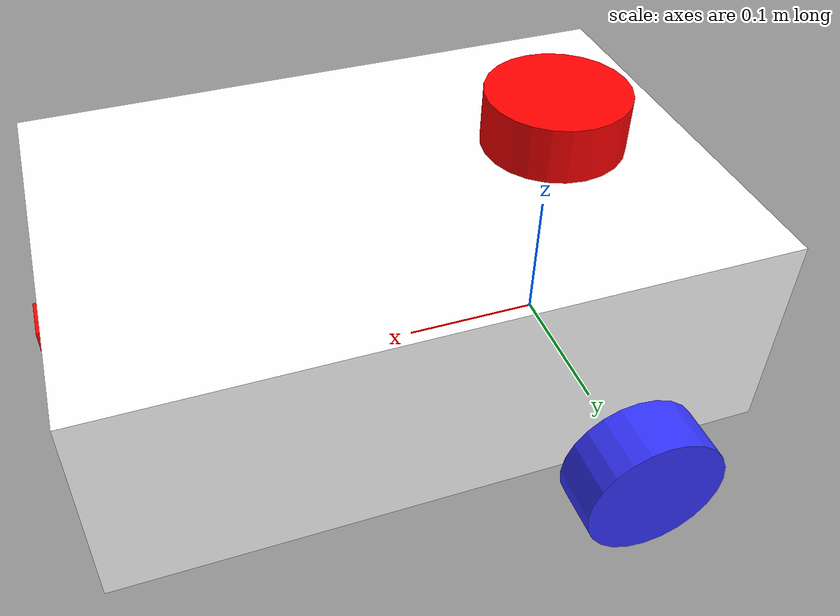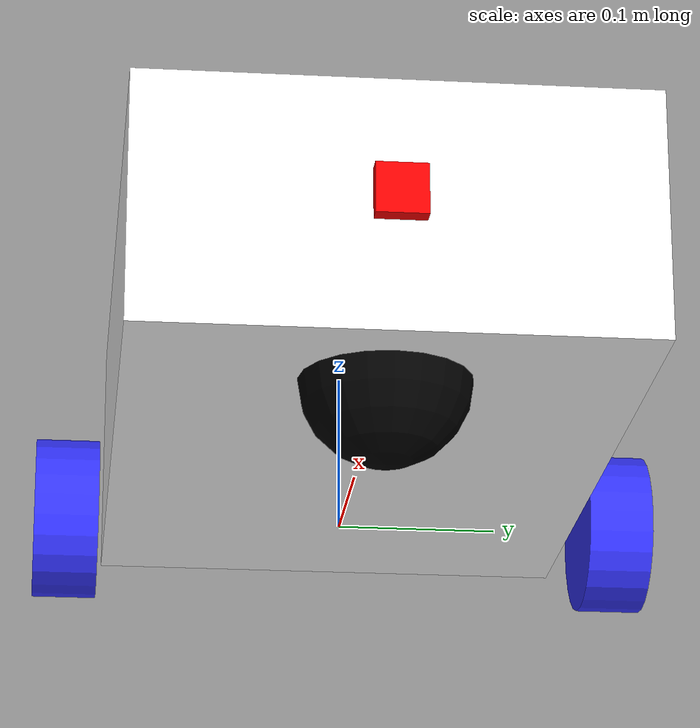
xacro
<?xml version="1.0"?>
<robot xmlns:xacro="http://www.ros.org/wiki/xacro"  name="robot">

    <xacro:arg name="use_ros2_control" default="true"/>

    <xacro:include filename="robot_core.xacro"/>
    <xacro:if value="$(arg use_ros2_control)">
        <xacro:include filename="ros2_control.xacro"/>
    </xacro:if>
    <xacro:unless value="$(arg use_ros2_control)">
        <xacro:include filename="gazebo_control.xacro"/>
    </xacro:unless>
    <xacro:include filename="lidar.xacro"/>
    <xacro:include filename="camera.xacro"/>
    <xacro:include filename="depth_camera.xacro"/>

</robot>

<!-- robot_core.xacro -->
<robot xmlns:xacro="http://www.ros.org/wiki/xacro">

    <xacro:include filename="inertial_macros.xacro"/>

    <xacro:property name="chassis_length" value="0.45"/>
    <xacro:property name="chassis_width" value="0.3"/>
    <xacro:property name="chassis_height" value="0.15"/>
    <xacro:property name="chassis_mass" value="0.7"/>
    <xacro:property name="wheel_radius" value="0.05"/>
    <xacro:property name="wheel_thickness" value="0.04"/>
    <xacro:property name="wheel_mass" value="0.01"/>
    <xacro:property name="wheel_offset_x" value="0.1"/>
    <xacro:property name="wheel_offset_y" value="0.175"/>
    <xacro:property name="wheel_offset_z" value="0"/>
    <xacro:property name="caster_wheel_radius" value="0.05"/>
    <xacro:property name="caster_wheel_mass" value="0.25"/>
    <xacro:property name="caster_wheel_offset_x" value="0.37"/>
    <xacro:property name="caster_wheel_offset_z" value="${wheel_offset_z - wheel_radius + caster_wheel_radius}"/>

    <material name="white">
        <color rgba="1 1 1 1"/>
    </material>

    <material name="orange">
        <color rgba="1 0.3 0.1 1"/>
    </material>

    <material name="blue">
        <color rgba="0.2 0.2 1 1"/>
    </material>

    <material name="black">
        <color rgba="0 0 0 1"/>
    </material>

    <material name="red">
        <color rgba="1 0 0 1"/>
    </material>

    <!-- BASE LINK -->

    <link name="base_link">

    </link>

    <!-- BASE_FOOTPRINT LINK -->

    <joint name="base_footprint_joint" type="fixed">
        <parent link="base_link"/>
        <child link="base_footprint"/>
        <origin xyz="0 0 0" rpy="0 0 0"/>
    </joint>

    <link name="base_footprint">
    </link>

    <!-- CHASSIS LINK -->

    <joint name="chassis_joint" type="fixed">
        <parent link="base_link"/>
        <child link="chassis"/>
        <origin xyz="${-wheel_offset_x} 0 0"/>
    </joint>

    <link name="chassis">
        <visual>
            <origin xyz="${chassis_length/2} 0 ${chassis_height/2}"/>
            <geometry>
                <box size="${chassis_length} ${chassis_width} ${chassis_height}"/>
            </geometry>
            <material name="white"/>
        </visual>
        <collision>
            <origin xyz="${chassis_length/2} 0 ${chassis_height/2}"/>
            <geometry>
                <box size="${chassis_length} ${chassis_width} ${chassis_height}"/>
            </geometry>
        </collision>
        <xacro:inertial_box mass="${chassis_mass}" x="${chassis_length}" y="${chassis_width}" z="${chassis_height}">
            <origin xyz="${chassis_length/2} 0 ${chassis_height/2}" rpy="0 0 0"/>
        </xacro:inertial_box>
    </link>

    <gazebo reference="chassis">
        <material>Gazebo/White</material>
    </gazebo>

    <!-- LEFT WHEEL LINK -->

    <joint name="left_wheel_joint" type = "continuous">
        <parent link="base_link"/>
        <child link="left_wheel"/>
        <origin xyz="0 ${wheel_offset_y} 0" rpy="-${pi/2} 0 0"/>
        <axis xyz="0 0 1"/>
    </joint>

    <link name="left_wheel">
        <visual>
            <geometry>
                <cylinder radius="${wheel_radius}" length="${wheel_thickness}"/>
            </geometry>
            <material name="blue"/>
        </visual>
        <collision>
            <geometry>
                <sphere radius="${wheel_radius}"/>
            </geometry>
        </collision>
        <xacro:inertial_cylinder mass="${wheel_mass}" length="${wheel_thickness}" radius="${wheel_radius}">
            <origin xyz="0 0 0" rpy="0 0 0"/>
        </xacro:inertial_cylinder>
    </link>

    <gazebo reference="left_wheel">
        <material>Gazebo/Blue</material>
    </gazebo>

    <!-- RIGHT WHEEL LINK -->

    <joint name="right_wheel_joint" type = "continuous">
        <parent link="base_link"/>
        <child link="right_wheel"/>
        <origin xyz="0 ${-wheel_offset_y} 0" rpy="${pi/2} 0 0"/>
        <axis xyz="0 0 -1"/>
    </joint>

    <link name="right_wheel">
        <visual>
            <geometry>
                <cylinder radius="${wheel_radius}" length="${wheel_thickness}"/>
            </geometry>
            <material name="blue"/>
        </visual>
        <collision>
            <geometry>
                <sphere radius="${wheel_radius}"/>
            </geometry>
        </collision>
        <xacro:inertial_cylinder mass="${wheel_mass}" length="${wheel_thickness}" radius="${wheel_radius}">
            <origin xyz="0 0 0" rpy="0 0 0"/>
        </xacro:inertial_cylinder>
    </link>

    <gazebo reference="right_wheel">
        <material>Gazebo/Blue</material>
    </gazebo>

    <!-- CASTER WHEEL LINK -->

    <joint name="caster_wheel_joint" type="fixed">
        <parent link="chassis"/>
        <child link="caster_wheel"/>
        <origin xyz="${caster_wheel_offset_x} 0 ${caster_wheel_offset_z}"/>
    </joint>

    <link name="caster_wheel">
        <visual>
            <geometry>
                <sphere radius="${caster_wheel_radius}"/>
            </geometry>
            <material name="black"/>
        </visual>
        <collision>
            <geometry>
                <sphere radius="${caster_wheel_radius}"/>
            </geometry>
        </collision>
        <xacro:inertial_sphere mass="${caster_wheel_mass}" radius="${caster_wheel_radius}">
            <origin xyz="0 0 0" rpy="0 0 0"/>
        </xacro:inertial_sphere>
    </link>

    <gazebo reference="caster_wheel">
        <material>Gazebo/Black</material>
        <mu1 value="0.001"/>
        <mu2 value="0.001"/>
    </gazebo>
</robot>

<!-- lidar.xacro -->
<robot xmlns:xacro="http://www.ros.org/wiki/xacro">

    <joint name="laser_joint" type="fixed">
        <parent link="chassis"/>
        <child link="laser_frame"/>
        <origin xyz="0.1 0 0.175" rpy="0 0 0"/>
    </joint>

    <link name="laser_frame">
        <visual>
            <geometry>
                <cylinder radius="0.05" length="0.04"/>
            </geometry>
            <material name="red"/>
        </visual>
        <collision>
            <geometry>
                <cylinder radius="0.05" length="0.04"/>
            </geometry>
        </collision>
        <xacro:inertial_cylinder mass="0.1" length="0.04" radius="0.05">
            <origin xyz="0 0 0" rpy="0 0 0"/>
        </xacro:inertial_cylinder>
    </link>

    <gazebo reference="laser_frame">
        <sensor name="laser" type="ray">
            <pose>0 0 0 0 0 0</pose>
            <visualize>false</visualize>
            <update_rate>10</update_rate>
            <ray>
                <scan>
                    <horizontal>
                        <samples>360</samples>
                        <min_angle>-3.14</min_angle>
                        <max_angle>3.14</max_angle>
                    </horizontal>
                </scan>
                <range>
                    <min>0.3</min>
                    <max>12</max>
                    <resolution>0.01</resolution>
                </range>
                <noise>
                   <type>gaussian</type>
                   <mean>0.0</mean>
                   <stddev>0.01</stddev>
                </noise>
            </ray>
            <plugin name="laser_controller" filename="libgz_ros_laser.so">
                <ros>
                    <argument>~/out:=scan</argument>
                </ros>
                <output_type>sensor_msgs/LaserScan</output_type>
                <topic>scan</topic>
                <frame_id>laser_frame</frame_id>
                <message_type>sensor_msgs/msg/LaserScan</message_type>
            </plugin>
        </sensor>
        <material>Gazebo/Red</material>
    </gazebo>

</robot>

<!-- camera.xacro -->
<robot xmlns:xacro="http://www.ros.org/wiki/xacro">

    <joint name="camera_joint" type="fixed">
        <parent link="chassis"/>
        <child link="camera_link"/>
        <origin xyz="0.455 0 0.08" rpy="0 0 0"/>
    </joint>

    <link name="camera_link">
        <visual>
            <geometry>
                <box size="0.01 0.03 0.03"/>
            </geometry>
            <material name="red"/>
        </visual>
    </link>

    <joint name="camera_optical_joint" type="fixed">
        <parent link="camera_link"/>
        <child link="camera_link_optical"/>
        <origin xyz="0 0 0" rpy="${-pi/2} 0 ${-pi/2}"/>
    </joint>

    <link name="camera_link_optical"></link>

    <gazebo reference="camera_link">
        <sensor name="camera" type="camera">
            <pose>0 0 0 0 0 0</pose>
            <visualize>true</visualize>
            <update_rate>10</update_rate>
            <camera>
                <horizontal_fov>1.089</horizontal_fov>
                <image>
                    <format>RGB8</format>
                    <width>640</width>
                    <height>480</height>
                </image>
                <clip>
                    <near>0.05</near>
                    <far>8.0</far>
                </clip>
            </camera>
            <plugin name="camera_controller" filename="libgz_ros_camera.so">
                #<frame_name>camera_link_optical</frame_name>
                <camera_name>camera</camera_name>
                <frame_id>camera_link_optical</frame_id>
            </plugin>
        </sensor>
        <material>Gazebo/Red</material>
    </gazebo>
</robot>

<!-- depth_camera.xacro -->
<robot xmlns:xacro="http://www.ros.org/wiki/xacro">

    <joint name="depth_camera_joint" type="fixed">
        <parent link="chassis"/>
        <child link="depth_camera_link"/>
        <origin xyz="0.455 0 0.08" rpy="0 0 0"/>
    </joint>

    <link name="depth_camera_link">
        <visual>
            <geometry>
                <box size="0.01 0.03 0.03"/>
            </geometry>
            <material name="red"/>
        </visual>
    </link>

    <joint name="depth_camera_optical_joint" type="fixed">
        <parent link="depth_camera_link"/>
        <child link="depth_camera_link_optical"/>
        <origin xyz="0 0 0" rpy="${-pi/2} 0 ${-pi/2}"/>
    </joint>

    <link name="depth_camera_link_optical"></link>

    <gazebo reference="depth_camera_link">
        <sensor name="depth_camera" type="depth">
            <pose>0 0 0 0 0 0</pose>
            <visualize>true</visualize>
            <update_rate>10</update_rate>
            <camera>
                <horizontal_fov>1.089</horizontal_fov>
                <image>
                    <format>B8G8R8</format>
                    <width>640</width>
                    <height>480</height>
                </image>
                <clip>
                    <near>0.05</near>
                    <far>8.0</far>
                </clip>
            </camera>
            <plugin name="depth_camera_controller" filename="libgazebo_ros_camera.so">
                <frame_name>camera_link_optical</frame_name>
                <min_depth>0.1</min_depth>
                <max_depth>100.0</max_depth>
            </plugin>
        </sensor>
        <material>Gazebo/Red</material>
    </gazebo>

</robot>
